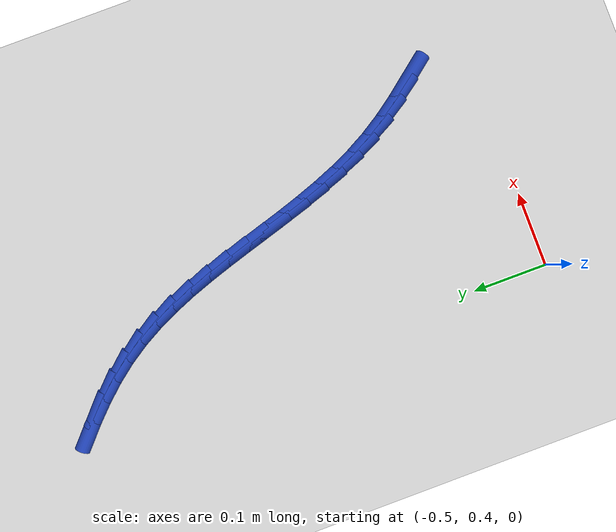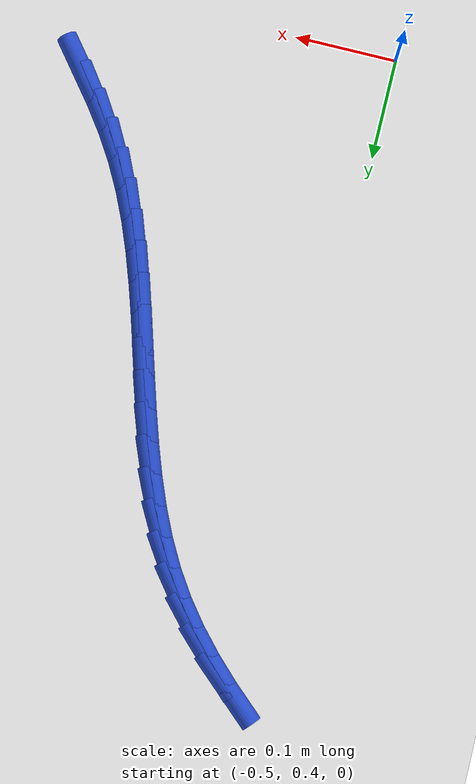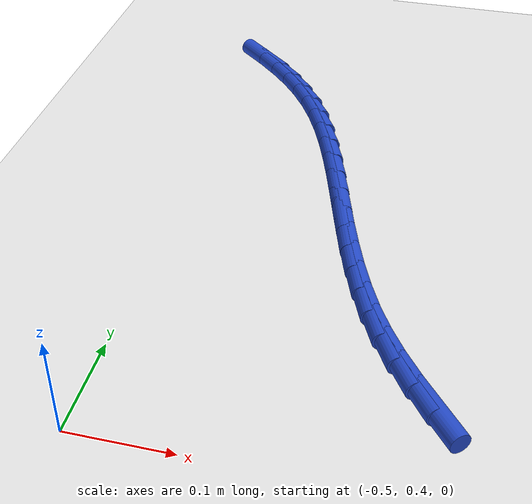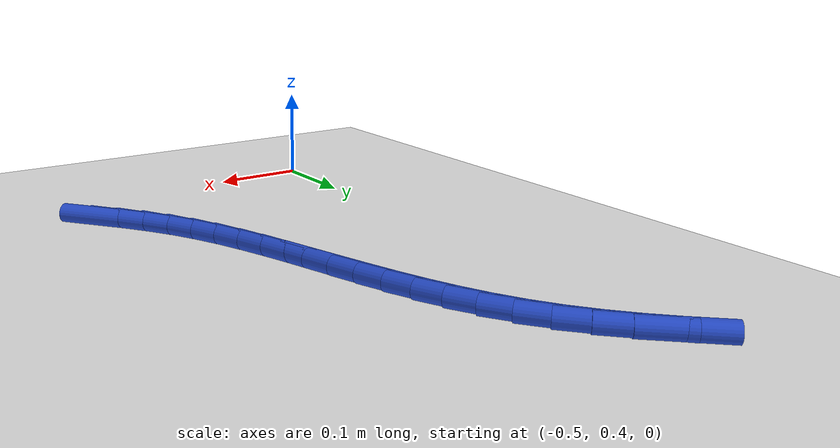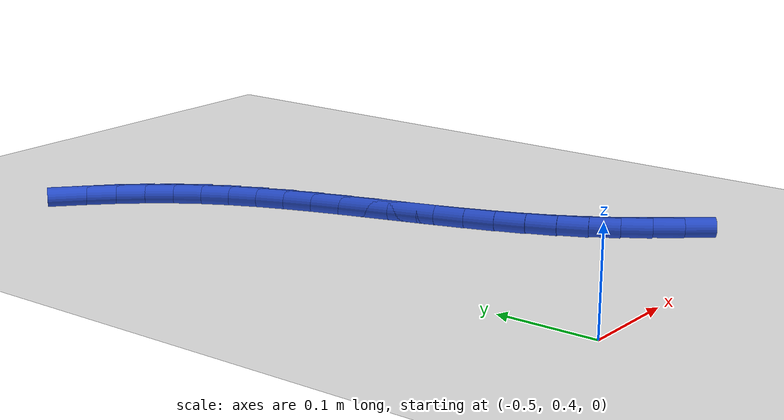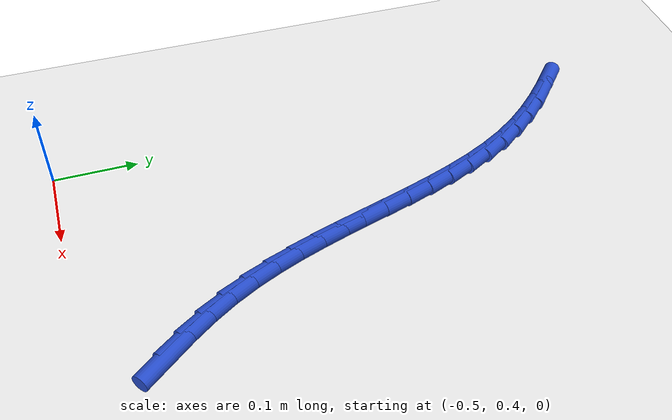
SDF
<sdf version="1.6">
 <world name="default">
  <model name="ground_plane">
   <static>1</static>
   <link name="link">
    <collision name="collision">
     <geometry><plane><normal>0 0 1</normal><size>100 100</size></plane></geometry>
     <surface><friction><ode><mu>100</mu><mu2>50</mu2></ode></friction></surface>
    </collision>
    <visual name="visual">
     <cast_shadows>0</cast_shadows>
     <geometry><plane><normal>0 0 1</normal><size>100 100</size></plane></geometry>
     <material>
      <script><uri>file://media/materials/scripts/gazebo.material</uri><name>Gazebo/WhiteGlow</name></script>
     </material>
    </visual>
   </link>
  </model>
  <model name="line">
   <link name="link_18">
    <pose>-0.20929852191210643 0.4869879161949373 0.01 0 1.57 -0.8989552329183907</pose>
    <collision name="collision">
     <geometry><cylinder><radius>0.01</radius><length>0.08</length></cylinder></geometry>
    </collision>
    <visual name="visual">
     <material>
      <script><name>Gazebo/Blue</name><uri>file://media/materials/scripts/gazebo.material</uri></script>
     </material>
     <geometry><cylinder><radius>0.01</radius><length>0.08</length></cylinder></geometry>
    </visual>
   </link>
   <link name="link_19">
    <pose>-0.22852436839422038 0.5111636090423126 0.01 0 1.57 -0.9454038836693864</pose>
    <collision name="collision">
     <geometry><cylinder><radius>0.01</radius><length>0.08</length></cylinder></geometry>
    </collision>
    <visual name="visual">
     <material>
      <script><name>Gazebo/Blue</name><uri>file://media/materials/scripts/gazebo.material</uri></script>
     </material>
     <geometry><cylinder><radius>0.01</radius><length>0.08</length></cylinder></geometry>
    </visual>
   </link>
   <link name="link_20">
    <pose>-0.24649953709487288 0.5360571602518056 0.01 0 1.57 -1.005572573166083</pose>
    <collision name="collision">
     <geometry><cylinder><radius>0.01</radius><length>0.08</length></cylinder></geometry>
    </collision>
    <visual name="visual">
     <material>
      <script><name>Gazebo/Blue</name><uri>file://media/materials/scripts/gazebo.material</uri></script>
     </material>
     <geometry><cylinder><radius>0.01</radius><length>0.08</length></cylinder></geometry>
    </visual>
   </link>
   <link name="link_21">
    <pose>-0.2628624268916679 0.5618559395138283 0.01 0 1.57 -1.0756817864464938</pose>
    <collision name="collision">
     <geometry><cylinder><radius>0.01</radius><length>0.08</length></cylinder></geometry>
    </collision>
    <visual name="visual">
     <material>
      <script><name>Gazebo/Blue</name><uri>file://media/materials/scripts/gazebo.material</uri></script>
     </material>
     <geometry><cylinder><radius>0.01</radius><length>0.08</length></cylinder></geometry>
    </visual>
   </link>
   <link name="link_22">
    <pose>-0.2773531183460129 0.5886917550924509 0.01 0 1.57 -1.1386581302464147</pose>
    <collision name="collision">
     <geometry><cylinder><radius>0.01</radius><length>0.08</length></cylinder></geometry>
    </collision>
    <visual name="visual">
     <material>
      <script><name>Gazebo/Blue</name><uri>file://media/materials/scripts/gazebo.material</uri></script>
     </material>
     <geometry><cylinder><radius>0.01</radius><length>0.08</length></cylinder></geometry>
    </visual>
   </link>
   <link name="link_23">
    <pose>-0.29015697139455343 0.6164531034154008 0.01 0 1.57 -1.189663812116927</pose>
    <collision name="collision">
     <geometry><cylinder><radius>0.01</radius><length>0.08</length></cylinder></geometry>
    </collision>
    <visual name="visual">
     <material>
      <script><name>Gazebo/Blue</name><uri>file://media/materials/scripts/gazebo.material</uri></script>
     </material>
     <geometry><cylinder><radius>0.01</radius><length>0.08</length></cylinder></geometry>
    </visual>
   </link>
   <link name="link_24">
    <pose>-0.3015812003584858 0.644961896613624 0.01 0 1.57 -1.2287862854626088</pose>
    <collision name="collision">
     <geometry><cylinder><radius>0.01</radius><length>0.08</length></cylinder></geometry>
    </collision>
    <visual name="visual">
     <material>
      <script><name>Gazebo/Blue</name><uri>file://media/materials/scripts/gazebo.material</uri></script>
     </material>
     <geometry><cylinder><radius>0.01</radius><length>0.08</length></cylinder></geometry>
    </visual>
   </link>
   <link name="link_25">
    <pose>-0.31193302262040384 0.6740400451452422 0.01 0 1.57 -1.256285978493279</pose>
    <collision name="collision">
     <geometry><cylinder><radius>0.01</radius><length>0.08</length></cylinder></geometry>
    </collision>
    <visual name="visual">
     <material>
      <script><name>Gazebo/Blue</name><uri>file://media/materials/scripts/gazebo.material</uri></script>
     </material>
     <geometry><cylinder><radius>0.01</radius><length>0.08</length></cylinder></geometry>
    </visual>
   </link>
   <link name="link_26">
    <pose>-0.3215196555629017 0.7035094594683765 0.01 0 1.57 -1.272434163234875</pose>
    <collision name="collision">
     <geometry><cylinder><radius>0.01</radius><length>0.08</length></cylinder></geometry>
    </collision>
    <visual name="visual">
     <material>
      <script><name>Gazebo/Blue</name><uri>file://media/materials/scripts/gazebo.material</uri></script>
     </material>
     <geometry><cylinder><radius>0.01</radius><length>0.08</length></cylinder></geometry>
    </visual>
   </link>
   <link name="link_27">
    <pose>-0.3306483165685731 0.7331920500411484 0.01 0 1.57 -1.277407993815817</pose>
    <collision name="collision">
     <geometry><cylinder><radius>0.01</radius><length>0.08</length></cylinder></geometry>
    </collision>
    <visual name="visual">
     <material>
      <script><name>Gazebo/Blue</name><uri>file://media/materials/scripts/gazebo.material</uri></script>
     </material>
     <geometry><cylinder><radius>0.01</radius><length>0.08</length></cylinder></geometry>
    </visual>
   </link>
   <link name="link_28">
    <pose>-0.339626223020012 0.7629097273216794 0.01 0 1.57 -1.2712330391350557</pose>
    <collision name="collision">
     <geometry><cylinder><radius>0.01</radius><length>0.08</length></cylinder></geometry>
    </collision>
    <visual name="visual">
     <material>
      <script><name>Gazebo/Blue</name><uri>file://media/materials/scripts/gazebo.material</uri></script>
     </material>
     <geometry><cylinder><radius>0.01</radius><length>0.08</length></cylinder></geometry>
    </visual>
   </link>
   <link name="link_29">
    <pose>-0.34876059229981227 0.7924844017680911 0.01 0 1.57 -1.2537647110883685</pose>
    <collision name="collision">
     <geometry><cylinder><radius>0.01</radius><length>0.08</length></cylinder></geometry>
    </collision>
    <visual name="visual">
     <material>
      <script><name>Gazebo/Blue</name><uri>file://media/materials/scripts/gazebo.material</uri></script>
     </material>
     <geometry><cylinder><radius>0.01</radius><length>0.08</length></cylinder></geometry>
    </visual>
   </link>
   <link name="link_30">
    <pose>-0.35835864179056787 0.821737983838505 0.01 0 1.57 -1.2247062890589913</pose>
    <collision name="collision">
     <geometry><cylinder><radius>0.01</radius><length>0.08</length></cylinder></geometry>
    </collision>
    <visual name="visual">
     <material>
      <script><name>Gazebo/Blue</name><uri>file://media/materials/scripts/gazebo.material</uri></script>
     </material>
     <geometry><cylinder><radius>0.01</radius><length>0.08</length></cylinder></geometry>
    </visual>
   </link>
   <link name="link_31">
    <pose>-0.36872758887487284 0.8504923839910424 0.01 0 1.57 -1.1836691837615632</pose>
    <collision name="collision">
     <geometry><cylinder><radius>0.01</radius><length>0.08</length></cylinder></geometry>
    </collision>
    <visual name="visual">
     <material>
      <script><name>Gazebo/Blue</name><uri>file://media/materials/scripts/gazebo.material</uri></script>
     </material>
     <geometry><cylinder><radius>0.01</radius><length>0.08</length></cylinder></geometry>
    </visual>
   </link>
   <link name="link_32">
    <pose>-0.3801746509353207 0.8785695126838247 0.01 0 1.57 -1.1302877657501977</pose>
    <collision name="collision">
     <geometry><cylinder><radius>0.01</radius><length>0.08</length></cylinder></geometry>
    </collision>
    <visual name="visual">
     <material>
      <script><name>Gazebo/Blue</name><uri>file://media/materials/scripts/gazebo.material</uri></script>
     </material>
     <geometry><cylinder><radius>0.01</radius><length>0.08</length></cylinder></geometry>
    </visual>
   </link>
   <link name="link_33">
    <pose>-0.3930070453545059 0.9057912803749737 0.01 0 1.57 -1.0644019238452715</pose>
    <collision name="collision">
     <geometry><cylinder><radius>0.01</radius><length>0.08</length></cylinder></geometry>
    </collision>
    <visual name="visual">
     <material>
      <script><name>Gazebo/Blue</name><uri>file://media/materials/scripts/gazebo.material</uri></script>
     </material>
     <geometry><cylinder><radius>0.01</radius><length>0.08</length></cylinder></geometry>
    </visual>
   </link>
   <link name="link_34">
    <pose>-0.4075319895150218 0.9319795975226104 0.01 0 1.57 -0.9864521860672946</pose>
    <collision name="collision">
     <geometry><cylinder><radius>0.01</radius><length>0.08</length></cylinder></geometry>
    </collision>
    <visual name="visual">
     <material>
      <script><name>Gazebo/Blue</name><uri>file://media/materials/scripts/gazebo.material</uri></script>
     </material>
     <geometry><cylinder><radius>0.01</radius><length>0.08</length></cylinder></geometry>
    </visual>
   </link>
   <link name="link_35">
    <pose>-0.4240528685556655 0.956958434204447 0.01 0 1.57 -0.9055952675108673</pose>
    <collision name="collision">
     <geometry><cylinder><radius>0.01</radius><length>0.08</length></cylinder></geometry>
    </collision>
    <visual name="visual">
     <material>
      <script><name>Gazebo/Blue</name><uri>file://media/materials/scripts/gazebo.material</uri></script>
     </material>
     <geometry><cylinder><radius>0.01</radius><length>0.08</length></cylinder></geometry>
    </visual>
   </link>
   <link name="link_36">
    <pose>-0.4426536823417337 0.9806696679777407 0.01 0 1.57 -0.835000655140958</pose>
    <collision name="collision">
     <geometry><cylinder><radius>0.01</radius><length>0.08</length></cylinder></geometry>
    </collision>
    <visual name="visual">
     <material>
      <script><name>Gazebo/Blue</name><uri>file://media/materials/scripts/gazebo.material</uri></script>
     </material>
     <geometry><cylinder><radius>0.01</radius><length>0.08</length></cylinder></geometry>
    </visual>
   </link>
   <link name="link_37">
    <pose>-0.46308431459804655 1.003234745389823 0.01 0 1.57 -0.7755948475873455</pose>
    <collision name="collision">
     <geometry><cylinder><radius>0.01</radius><length>0.08</length></cylinder></geometry>
    </collision>
    <visual name="visual">
     <material>
      <script><name>Gazebo/Blue</name><uri>file://media/materials/scripts/gazebo.material</uri></script>
     </material>
     <geometry><cylinder><radius>0.01</radius><length>0.08</length></cylinder></geometry>
    </visual>
   </link>
   <link name="link_38">
    <pose>-0.4850665900722247 1.0247901931400654 0.01 0 1.57 -0.7268962510684988</pose>
    <collision name="collision">
     <geometry><cylinder><radius>0.01</radius><length>0.08</length></cylinder></geometry>
    </collision>
    <visual name="visual">
     <material>
      <script><name>Gazebo/Blue</name><uri>file://media/materials/scripts/gazebo.material</uri></script>
     </material>
     <geometry><cylinder><radius>0.01</radius><length>0.08</length></cylinder></geometry>
    </visual>
   </link>
  </model>
 </world>
</sdf>
